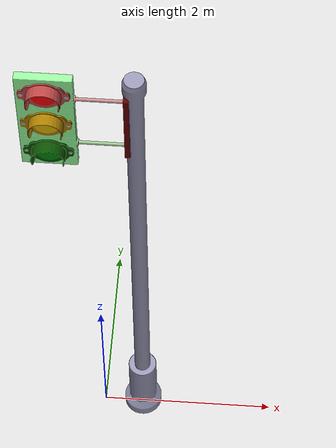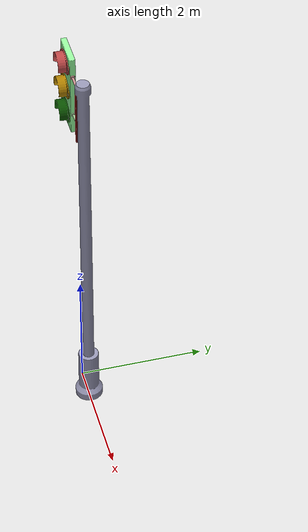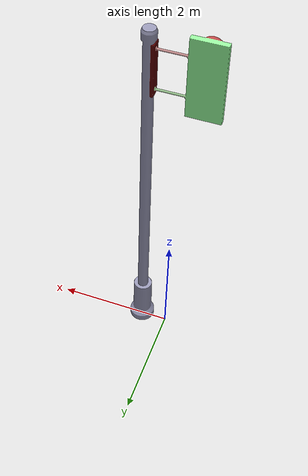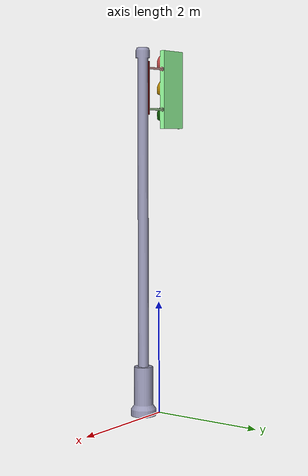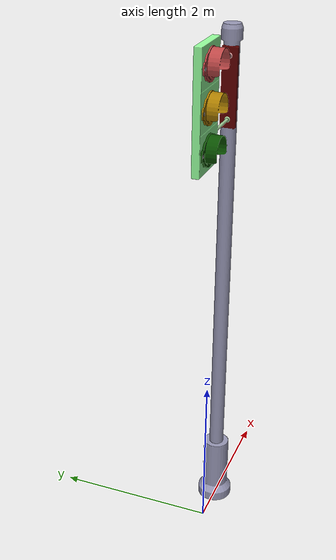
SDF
<?xml version="1.0" ?>
<sdf version="1.7">
  <model name="traffic_light">
    <static>true</static>
    <link name="traffic_light_link">
      <visual name="traffic_light_visual">
        <geometry>
          <mesh>
            <uri>model://traffic_light/meshes/traffic_light.dae</uri>
            <scale>0.03 0.03 0.03</scale>
          </mesh>
        </geometry>
      </visual>
      <collision name="traffic_light_collision">
        <geometry>
          <mesh>
            <uri>model://traffic_light/meshes/traffic_light.dae</uri>
            <scale>0.03 0.03 0.03</scale>
          </mesh>
        </geometry>
      </collision>
    </link>
  </model>
</sdf>
